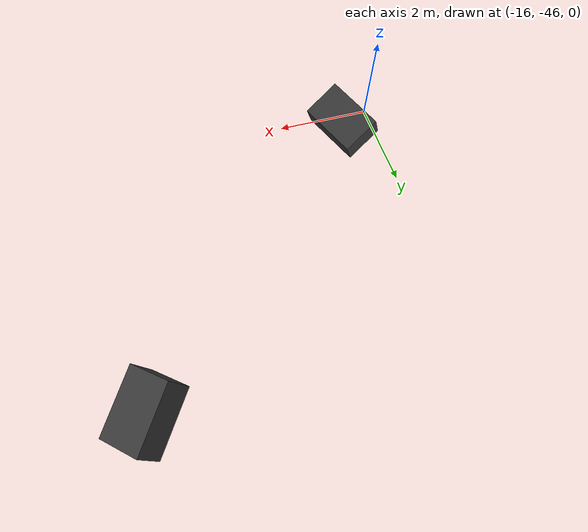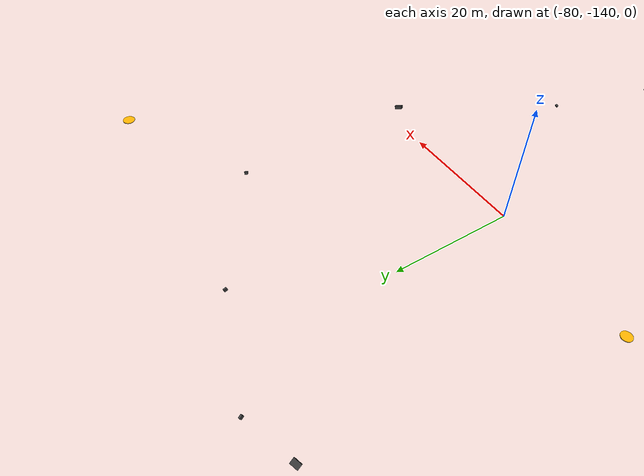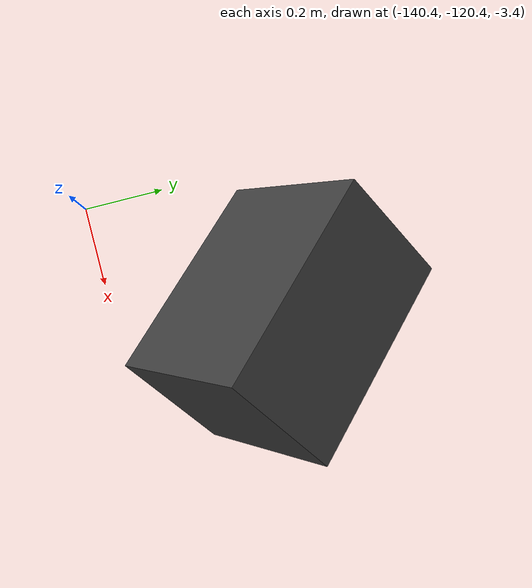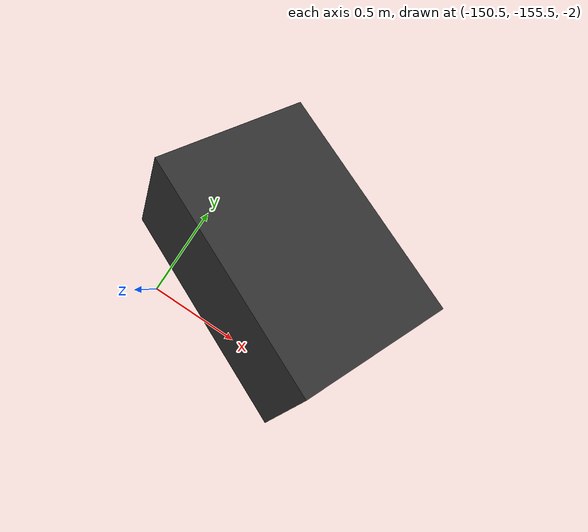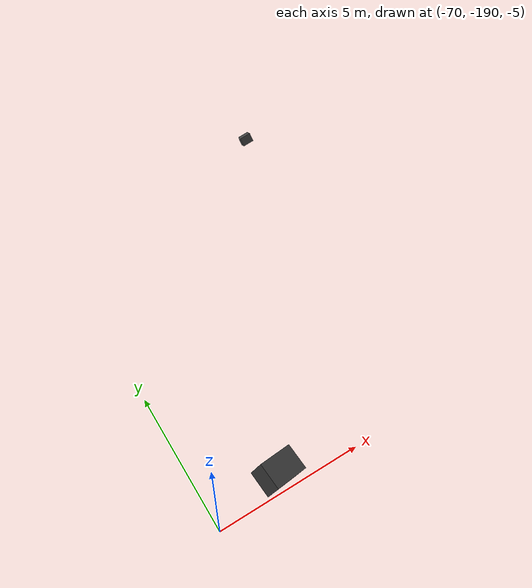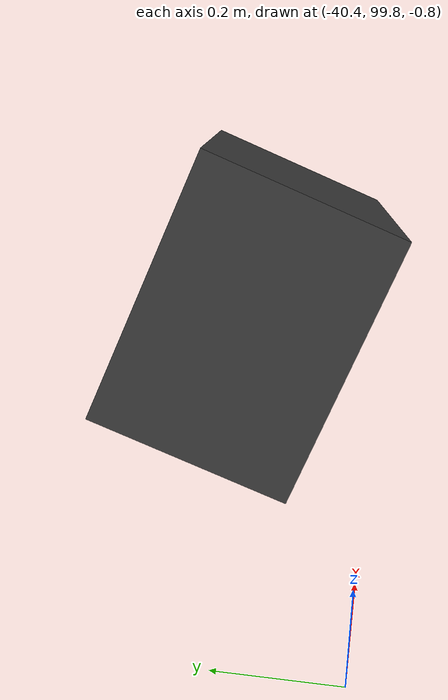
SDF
<sdf version="1.9">
 <world name="lunar_psr">
  <gravity>0 0 -1.62</gravity>
  <physics name="lunar_physics" type="ode">
   <max_step_size>0.002</max_step_size>
   <real_time_factor>1.0</real_time_factor>
   <real_time_update_rate>500</real_time_update_rate>
  </physics>
  <plugin filename="gz-sim-physics-system" name="gz::sim::systems::Physics"/>
  <plugin filename="gz-sim-user-commands-system" name="gz::sim::systems::UserCommands"/>
  <plugin filename="gz-sim-scene-broadcaster-system" name="gz::sim::systems::SceneBroadcaster"/>
  <plugin filename="gz-sim-sensors-system" name="gz::sim::systems::Sensors">
   <render_engine>ogre2</render_engine>
  </plugin>
  <plugin filename="gz-sim-imu-system" name="gz::sim::systems::Imu"/>
  <plugin filename="gz-sim-contact-system" name="gz::sim::systems::Contact"/>
  <scene><ambient>0.02 0.02 0.02 1</ambient><background>0 0 0 1</background><shadows>true</shadows></scene>
  <light type="directional" name="sun">
   <pose>0 0 100 0 0 0</pose>
   <diffuse>1.0 0.98 0.95 1</diffuse>
   <specular>0.3 0.3 0.3 1</specular>
   <direction>0.3 -0.1 -0.15</direction>
  </light>
  <include><uri>model://depot_marker</uri><name>depot</name><pose>-100 -150 -13.86 0 0 0</pose></include>
  <include><uri>model://depot_marker</uri><name>recharge_pad</name><pose>-30 -100 0.94 0 0 0</pose></include>
  <include>
   <uri>model://crater_rock_01</uri>
   <name>crater_rim_rock_01</name>
   <pose>-55 -110 3.6 0.1 0.0 0.8</pose>
  </include>
  <include>
   <uri>model://crater_rock_01</uri>
   <name>crater_rim_rock_02</name>
   <pose>-72 -98 2.27 0.0 0.2 1.5</pose>
  </include>
  <include>
   <uri>model://crater_rock_01</uri>
   <name>crater_rim_rock_03</name>
   <pose>-140 -120 -3.09 0.3 0.1 2.3</pose>
  </include>
  <include>
   <uri>model://crater_rock_01</uri>
   <name>crater_rim_rock_04</name>
   <pose>-125 -195 -1.57 0.15 0.25 0.4</pose>
  </include>
  <include>
   <uri>model://crater_rock_01</uri>
   <name>crater_rim_rock_05</name>
   <pose>-60 -175 -6.24 0.2 0.0 3.1</pose>
  </include>
  <include>
   <uri>model://crater_rock_01</uri>
   <name>crater_rim_rock_06</name>
   <pose>-88 -92 1.23 0.0 0.3 1.9</pose>
  </include>
  <include>
   <uri>model://crater_rock_02</uri>
   <name>crater_rim_rock_07</name>
   <pose>-48 -145 -2.43 0.1 0.15 0.6</pose>
  </include>
  <include>
   <uri>model://crater_rock_02</uri>
   <name>crater_rim_rock_08</name>
   <pose>-150 -155 -1.59 0.2 0.0 2.7</pose>
  </include>
  <include>
   <uri>model://crater_rock_02</uri>
   <name>crater_rim_rock_09</name>
   <pose>-105 -205 1.49 0.05 0.2 1.1</pose>
  </include>
  <include>
   <uri>model://crater_rock_02</uri>
   <name>crater_rim_rock_10</name>
   <pose>-95 -95 -0.75 0.15 0.1 3.5</pose>
  </include>
  <include>
   <uri>model://crater_rock_02</uri>
   <name>crater_rim_rock_11</name>
   <pose>-68 -190 -2.77 0.0 0.25 0.2</pose>
  </include>
  <include>
   <uri>model://crater_rock_01</uri>
   <name>terrain_rock_01</name>
   <pose>30 -20 0.49 0.2 0.1 0.5</pose>
  </include>
  <include>
   <uri>model://crater_rock_01</uri>
   <name>terrain_rock_02</name>
   <pose>-180 60 1.51 0.0 0.3 1.8</pose>
  </include>
  <include>
   <uri>model://crater_rock_01</uri>
   <name>terrain_rock_03</name>
   <pose>120 -80 0.65 0.25 0.0 2.9</pose>
  </include>
  <include>
   <uri>model://crater_rock_01</uri>
   <name>terrain_rock_04</name>
   <pose>-40 100 -0.4 0.1 0.15 0.1</pose>
  </include>
  <include>
   <uri>model://crater_rock_01</uri>
   <name>terrain_rock_05</name>
   <pose>80 130 0.63 0.3 0.2 3.7</pose>
  </include>
  <include>
   <uri>model://crater_rock_02</uri>
   <name>terrain_rock_06</name>
   <pose>-150 -30 0.06 0.1 0.0 1.2</pose>
  </include>
  <include>
   <uri>model://crater_rock_02</uri>
   <name>terrain_rock_07</name>
   <pose>160 50 0.86 0.0 0.2 2.4</pose>
  </include>
  <include>
   <uri>model://crater_rock_02</uri>
   <name>terrain_rock_08</name>
   <pose>-20 -200 0.8 0.2 0.1 0.7</pose>
  </include>
  <include>
   <uri>model://crater_rock_01</uri>
   <name>terrain_rock_09</name>
   <pose>100 -150 -0.47 0.15 0.05 4.0</pose>
  </include>
  <include>
   <uri>model://crater_rock_02</uri>
   <name>terrain_rock_10</name>
   <pose>-90 180 0.03 0.0 0.3 1.6</pose>
  </include>
  <include>
   <uri>model://crater_rock_01</uri>
   <name>terrain_rock_11</name>
   <pose>200 -100 7.94 0.2 0.0 2.1</pose>
  </include>
  <include>
   <uri>model://crater_rock_02</uri>
   <name>chokepoint_rock_01</name>
   <pose>-10 -40 1.1 0.1 0.2 0.9</pose>
  </include>
  <include>
   <uri>model://crater_rock_02</uri>
   <name>chokepoint_rock_02</name>
   <pose>-15 -45 1.02 0.2 0.0 2.0</pose>
  </include>
  <include>
   <uri>model://crater_rock_02</uri>
   <name>chokepoint_rock_03</name>
   <pose>180 -50 3.69 0.0 0.15 1.4</pose>
  </include>
  <include>
   <uri>model://crater_rock_02</uri>
   <name>chokepoint_rock_04</name>
   <pose>-50 200 0.45 0.25 0.1 3.2</pose>
  </include>
 </world>
</sdf>

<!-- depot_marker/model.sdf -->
<sdf version="1.9">
  <model name="depot_marker">
    <static>true</static>
    <link name="marker_link">
      <visual name="marker_visual">
        <geometry>
          <cylinder>
            <radius>1.0</radius>
            <length>0.1</length>
          </cylinder>
        </geometry>
        <material>
          <ambient>0.8 0.5 0.0 1</ambient>
          <diffuse>1.0 0.7 0.0 1</diffuse>
          <specular>0.3 0.2 0.0 1</specular>
        </material>
      </visual>
    </link>
  </model>
</sdf>

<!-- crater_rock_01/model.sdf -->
<sdf version="1.9">
  <model name="crater_rock_01">
    <static>true</static>
    <link name="rock_link">
      <collision name="rock_collision">
        <pose>0 0 0 0.3 0.2 0</pose>
        <geometry>
          <box>
            <size>0.5 0.3 0.4</size>
          </box>
        </geometry>
        <surface>
          <friction>
            <ode>
              <mu>0.9</mu>
              <mu2>0.9</mu2>
            </ode>
          </friction>
        </surface>
      </collision>
      <visual name="rock_visual">
        <pose>0 0 0 0.3 0.2 0</pose>
        <geometry>
          <box>
            <size>0.5 0.3 0.4</size>
          </box>
        </geometry>
        <material>
          <ambient>0.15 0.15 0.15 1</ambient>
          <diffuse>0.25 0.25 0.25 1</diffuse>
          <specular>0.02 0.02 0.02 1</specular>
        </material>
      </visual>
    </link>
  </model>
</sdf>

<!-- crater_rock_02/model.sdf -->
<sdf version="1.9">
  <model name="crater_rock_02">
    <static>true</static>
    <link name="rock_link">
      <collision name="rock_collision">
        <pose>0 0 0 0.25 0.15 0</pose>
        <geometry>
          <box>
            <size>1.2 0.8 0.6</size>
          </box>
        </geometry>
        <surface>
          <friction>
            <ode>
              <mu>0.9</mu>
              <mu2>0.9</mu2>
            </ode>
          </friction>
        </surface>
      </collision>
      <visual name="rock_visual">
        <pose>0 0 0 0.25 0.15 0</pose>
        <geometry>
          <box>
            <size>1.2 0.8 0.6</size>
          </box>
        </geometry>
        <material>
          <ambient>0.12 0.12 0.12 1</ambient>
          <diffuse>0.22 0.22 0.22 1</diffuse>
          <specular>0.02 0.02 0.02 1</specular>
        </material>
      </visual>
    </link>
  </model>
</sdf>
